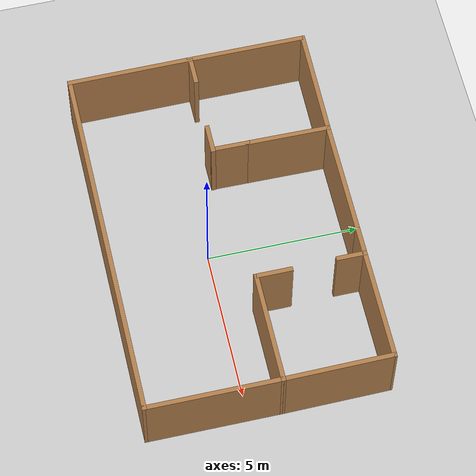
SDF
<sdf version="1.7">
 <world name="default">
  <light name="sun" type="directional">
   <pose>0 0 10 0 -0 0</pose>
   <diffuse>0.8 0.8 0.8 1</diffuse>
   <specular>0.2 0.2 0.2 1</specular>
   <attenuation>
    <range>1000</range>
    <constant>0.9</constant>
    <linear>0.01</linear>
    <quadratic>0.001</quadratic>
   </attenuation>
   <direction>-0.5 0.1 -0.9</direction>
   <spot><inner_angle>0</inner_angle><outer_angle>0</outer_angle><falloff>0</falloff></spot>
  </light>
  <model name="ground_plane">
   <static>1</static>
   <link name="link">
    <collision name="collision">
     <geometry><plane><normal>0 0 1</normal><size>100 100</size></plane></geometry>
     <surface>
      <contact><collide_bitmask>65535</collide_bitmask></contact>
      <friction><ode><mu>100</mu><mu2>50</mu2></ode></friction>
     </surface>
    </collision>
    <visual name="visual">
     <cast_shadows>0</cast_shadows>
     <geometry><plane><normal>0 0 1</normal><size>100 100</size></plane></geometry>
     <material>
      <script><uri>file://media/materials/scripts/gazebo.material</uri><name>Gazebo/Grey</name></script>
     </material>
    </visual>
   </link>
  </model>
  <gravity>0 0 -9.8</gravity>
  <magnetic_field>6e-06 2.3e-05 -4.2e-05</magnetic_field>
  <atmosphere type="adiabatic"/>
  <physics type="ode">
   <max_step_size>0.001</max_step_size>
   <real_time_factor>1</real_time_factor>
   <real_time_update_rate>1000</real_time_update_rate>
  </physics>
  <scene><ambient>0.4 0.4 0.4 1</ambient><background>0.7 0.7 0.7 1</background><shadows>1</shadows></scene>
  <spherical_coordinates>
   <surface_model>EARTH_WGS84</surface_model>
   <latitude_deg>0</latitude_deg>
   <longitude_deg>0</longitude_deg>
   <elevation>0</elevation>
   <heading_deg>0</heading_deg>
  </spherical_coordinates>
  <model name="Untitled">
   <pose>-0.143247 0.671041 0 0 -0 0</pose>
   <link name="Wall_0">
    <collision name="Wall_0_Collision">
     <geometry><box><size>12 0.15 2.5</size></box></geometry>
     <pose>0 0 1.25 0 -0 0</pose>
    </collision>
    <visual name="Wall_0_Visual">
     <pose>0 0 1.25 0 -0 0</pose>
     <geometry><box><size>12 0.15 2.5</size></box></geometry>
     <material>
      <script><uri>file://media/materials/scripts/gazebo.material</uri><name>Gazebo/Wood</name></script>
      <ambient>1 1 1 1</ambient>
     </material>
     <meta><layer>0</layer></meta>
    </visual>
    <pose>0.014917 -3.92525 0 0 -0 3.14159</pose>
   </link>
   <link name="Wall_10">
    <collision name="Wall_10_Collision">
     <geometry><box><size>1 0.15 2.5</size></box></geometry>
     <pose>0 0 1.25 0 -0 0</pose>
    </collision>
    <visual name="Wall_10_Visual">
     <pose>0 0 1.25 0 -0 0</pose>
     <geometry><box><size>1 0.15 2.5</size></box></geometry>
     <material>
      <script><uri>file://media/materials/scripts/gazebo.material</uri><name>Gazebo/Wood</name></script>
      <ambient>1 1 1 1</ambient>
     </material>
     <meta><layer>0</layer></meta>
    </visual>
    <pose>1.88881 3.89221 0 0 -0 0</pose>
   </link>
   <link name="Wall_11">
    <collision name="Wall_11_Collision">
     <geometry><box><size>1 0.15 2.5</size></box></geometry>
     <pose>0 0 1.25 0 -0 0</pose>
    </collision>
    <visual name="Wall_11_Visual">
     <pose>0 0 1.25 0 -0 0</pose>
     <geometry><box><size>1 0.15 2.5</size></box></geometry>
     <material>
      <script><uri>file://media/materials/scripts/gazebo.material</uri><name>Gazebo/Wood</name></script>
      <ambient>1 1 1 1</ambient>
     </material>
     <meta><layer>0</layer></meta>
    </visual>
    <pose>2.31381 3.46721 0 0 -0 -1.5708</pose>
   </link>
   <link name="Wall_14">
    <collision name="Wall_14_Collision">
     <geometry><box><size>1.25 0.15 2.5</size></box></geometry>
     <pose>0 0 1.25 0 -0 0</pose>
    </collision>
    <visual name="Wall_14_Visual">
     <pose>0 0 1.25 0 -0 0</pose>
     <geometry><box><size>1.25 0.15 2.5</size></box></geometry>
     <material>
      <script><uri>file://media/materials/scripts/gazebo.material</uri><name>Gazebo/Wood</name></script>
      <ambient>1 1 1 1</ambient>
     </material>
     <meta><layer>0</layer></meta>
    </visual>
    <pose>2.34849 0.941564 0 0 -0 -1.5708</pose>
   </link>
   <link name="Wall_15">
    <collision name="Wall_15_Collision">
     <geometry><box><size>3.75 0.15 2.5</size></box></geometry>
     <pose>0 0 1.25 0 -0 0</pose>
    </collision>
    <visual name="Wall_15_Visual">
     <pose>0 0 1.25 0 -0 0</pose>
     <geometry><box><size>3.75 0.15 2.5</size></box></geometry>
     <material>
      <script><uri>file://media/materials/scripts/gazebo.material</uri><name>Gazebo/Wood</name></script>
      <ambient>1 1 1 1</ambient>
     </material>
     <meta><layer>0</layer></meta>
    </visual>
    <pose>4.14848 0.391564 0 0 -0 0</pose>
   </link>
   <link name="Wall_16">
    <collision name="Wall_16_Collision">
     <geometry><box><size>4.46563 0.15 2.5</size></box></geometry>
     <pose>0 0 1.25 0 -0 0</pose>
    </collision>
    <visual name="Wall_16_Visual">
     <pose>0 0 1.25 0 -0 0</pose>
     <geometry><box><size>4.46563 0.15 2.5</size></box></geometry>
     <material>
      <script><uri>file://media/materials/scripts/gazebo.material</uri><name>Gazebo/Wood</name></script>
      <ambient>1 1 1 1</ambient>
     </material>
     <meta><layer>0</layer></meta>
    </visual>
    <pose>5.94417 -1.76625 0 0 -0 -1.57279</pose>
   </link>
   <link name="Wall_18">
    <collision name="Wall_18_Collision">
     <geometry><box><size>3.75 0.15 2.5</size></box></geometry>
     <pose>0 0 1.25 0 -0 0</pose>
    </collision>
    <visual name="Wall_18_Visual">
     <pose>0 0 1.25 0 -0 0</pose>
     <geometry><box><size>3.75 0.15 2.5</size></box></geometry>
     <material>
      <script><uri>file://media/materials/scripts/gazebo.material</uri><name>Gazebo/Wood</name></script>
      <ambient>1 1 1 1</ambient>
     </material>
     <meta><layer>0</layer></meta>
    </visual>
    <pose>4.11381 3.89221 0 0 -0 0</pose>
   </link>
   <link name="Wall_19">
    <collision name="Wall_19_Collision">
     <geometry><box><size>3.65082 0.15 2.5</size></box></geometry>
     <pose>0 0 1.25 0 -0 0</pose>
    </collision>
    <visual name="Wall_19_Visual">
     <pose>0 0 1.25 0 -0 0</pose>
     <geometry><box><size>3.65082 0.15 2.5</size></box></geometry>
     <material>
      <script><uri>file://media/materials/scripts/gazebo.material</uri><name>Gazebo/Wood</name></script>
      <ambient>1 1 1 1</ambient>
     </material>
     <meta><layer>0</layer></meta>
    </visual>
    <pose>5.93115 2.14189 0 0 -0 -1.56089</pose>
   </link>
   <link name="Wall_2">
    <collision name="Wall_2_Collision">
     <geometry><box><size>4.18971 0.15 2.5</size></box></geometry>
     <pose>0 0 1.25 0 -0 0</pose>
    </collision>
    <visual name="Wall_2_Visual">
     <pose>0 0 1.25 0 -0 0</pose>
     <geometry><box><size>4.18971 0.15 2.5</size></box></geometry>
     <material>
      <script><uri>file://media/materials/scripts/gazebo.material</uri><name>Gazebo/Wood</name></script>
      <ambient>1 1 1 1</ambient>
     </material>
     <meta><layer>0</layer></meta>
    </visual>
    <pose>-5.93794 -1.90542 0 0 -0 1.57604</pose>
   </link>
   <link name="Wall_21">
    <collision name="Wall_21_Collision">
     <geometry><box><size>1 0.15 2.5</size></box></geometry>
     <pose>0 0 1.25 0 -0 0</pose>
    </collision>
    <visual name="Wall_21_Visual">
     <pose>0 0 1.25 0 -0 0</pose>
     <geometry><box><size>1 0.15 2.5</size></box></geometry>
     <material>
      <script><uri>file://media/materials/scripts/gazebo.material</uri><name>Gazebo/Wood</name></script>
      <ambient>1 1 1 1</ambient>
     </material>
     <meta><layer>0</layer></meta>
    </visual>
    <pose>-5.52354 0.114407 0 0 -0 0</pose>
   </link>
   <link name="Wall_23">
    <collision name="Wall_23_Collision">
     <geometry><box><size>1 0.15 2.5</size></box></geometry>
     <pose>0 0 1.25 0 -0 0</pose>
    </collision>
    <visual name="Wall_23_Visual">
     <pose>0 0 1.25 0 -0 0</pose>
     <geometry><box><size>1 0.15 2.5</size></box></geometry>
     <material>
      <script><uri>file://media/materials/scripts/gazebo.material</uri><name>Gazebo/Wood</name></script>
      <ambient>1 1 1 1</ambient>
     </material>
     <meta><layer>0</layer></meta>
    </visual>
    <pose>-2.82843 0.08149 0 0 -0 3.14159</pose>
   </link>
   <link name="Wall_25">
    <collision name="Wall_25_Collision">
     <geometry><box><size>4 0.15 2.5</size></box></geometry>
     <pose>0 0 1.25 0 -0 0</pose>
    </collision>
    <visual name="Wall_25_Visual">
     <pose>0 0 1.25 0 -0 0</pose>
     <geometry><box><size>4 0.15 2.5</size></box></geometry>
     <material>
      <script><uri>file://media/materials/scripts/gazebo.material</uri><name>Gazebo/Wood</name></script>
      <ambient>1 1 1 1</ambient>
     </material>
     <meta><layer>0</layer></meta>
    </visual>
    <pose>-5.94854 1.99996 0 0 -0 1.5708</pose>
   </link>
   <link name="Wall_27">
    <collision name="Wall_27_Collision">
     <geometry><box><size>3.7125 0.15 2.5</size></box></geometry>
     <pose>0 0 1.25 0 -0 0</pose>
    </collision>
    <visual name="Wall_27_Visual">
     <pose>0 0 1.25 0 -0 0</pose>
     <geometry><box><size>3.7125 0.15 2.5</size></box></geometry>
     <material>
      <script><uri>file://media/materials/scripts/gazebo.material</uri><name>Gazebo/Wood</name></script>
      <ambient>1 1 1 1</ambient>
     </material>
     <meta><layer>0</layer></meta>
    </visual>
    <pose>-4.16736 3.90858 0 0 -0 -0.009191</pose>
   </link>
   <link name="Wall_4">
    <collision name="Wall_4_Collision">
     <geometry><box><size>1.29526 0.15 2.5</size></box></geometry>
     <pose>0 0 1.25 0 -0 0</pose>
    </collision>
    <visual name="Wall_4_Visual">
     <pose>0 0 1.25 0 -0 0</pose>
     <geometry><box><size>1.29526 0.15 2.5</size></box></geometry>
     <material>
      <script><uri>file://media/materials/scripts/gazebo.material</uri><name>Gazebo/Wood</name></script>
      <ambient>1 1 1 1</ambient>
     </material>
     <meta><layer>0</layer></meta>
    </visual>
    <pose>-2.41779 0.654094 0 0 -0 1.56142</pose>
   </link>
   <link name="Wall_8">
    <collision name="Wall_8_Collision">
     <geometry><box><size>2.81564 0.15 2.5</size></box></geometry>
     <pose>0 0 1.25 0 -0 0</pose>
    </collision>
    <visual name="Wall_8_Visual">
     <pose>0 0 1.25 0 -0 0</pose>
     <geometry><box><size>2.81564 0.15 2.5</size></box></geometry>
     <material>
      <script><uri>file://media/materials/scripts/gazebo.material</uri><name>Gazebo/Wood</name></script>
      <ambient>1 1 1 1</ambient>
     </material>
     <meta><layer>0</layer></meta>
    </visual>
    <pose>-2.3993 2.55945 0 0 -0 1.56095</pose>
   </link>
   <link name="Wall_9">
    <collision name="Wall_9_Collision">
     <geometry><box><size>4 0.15 2.5</size></box></geometry>
     <pose>0 0 1.25 0 -0 0</pose>
    </collision>
    <visual name="Wall_9_Visual">
     <pose>0 0 1.25 0 -0 0</pose>
     <geometry><box><size>4 0.15 2.5</size></box></geometry>
     <material>
      <script><uri>file://media/materials/scripts/gazebo.material</uri><name>Gazebo/Wood</name></script>
      <ambient>1 1 1 1</ambient>
     </material>
     <meta><layer>0</layer></meta>
    </visual>
    <pose>-0.461186 3.89221 0 0 -0 0</pose>
   </link>
   <static>1</static>
  </model>
 </world>
</sdf>
